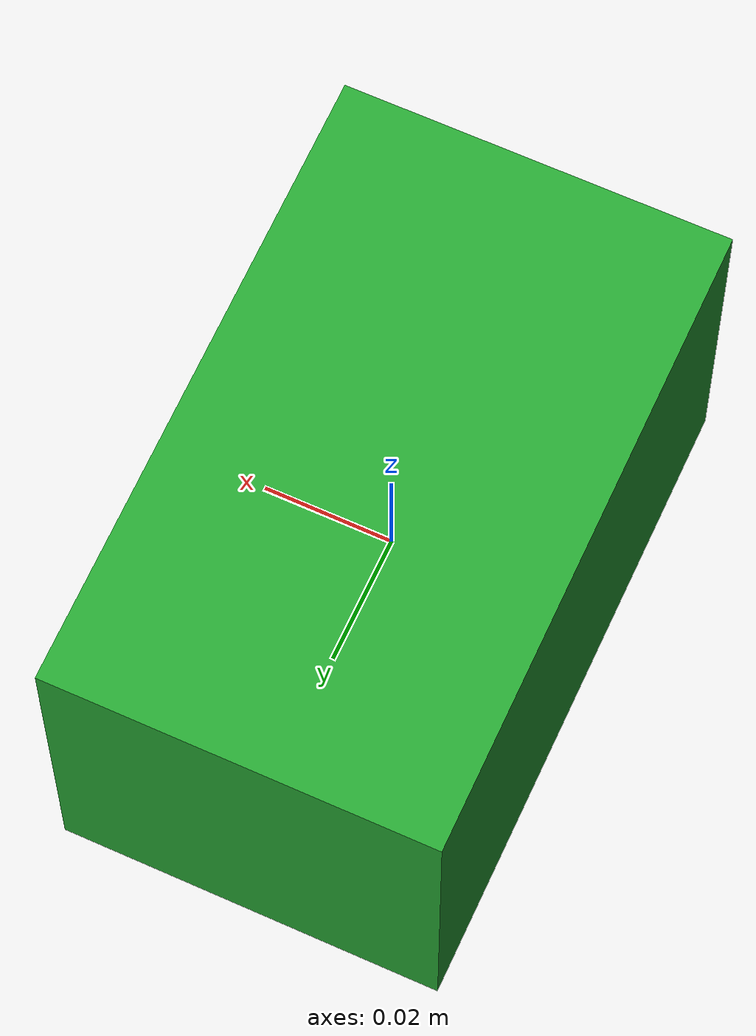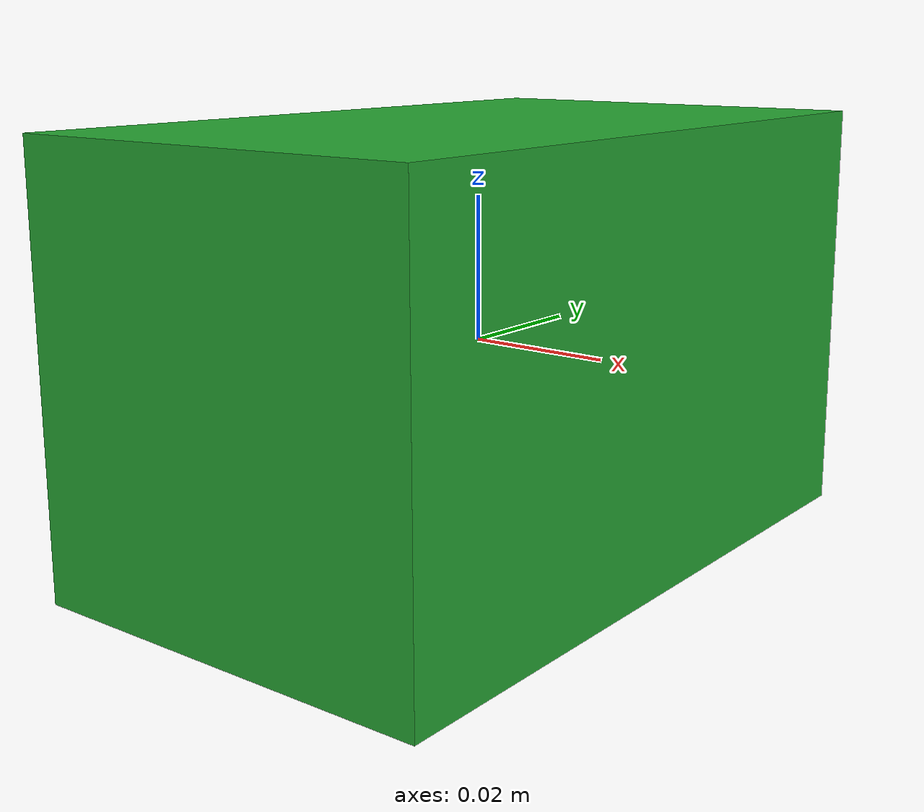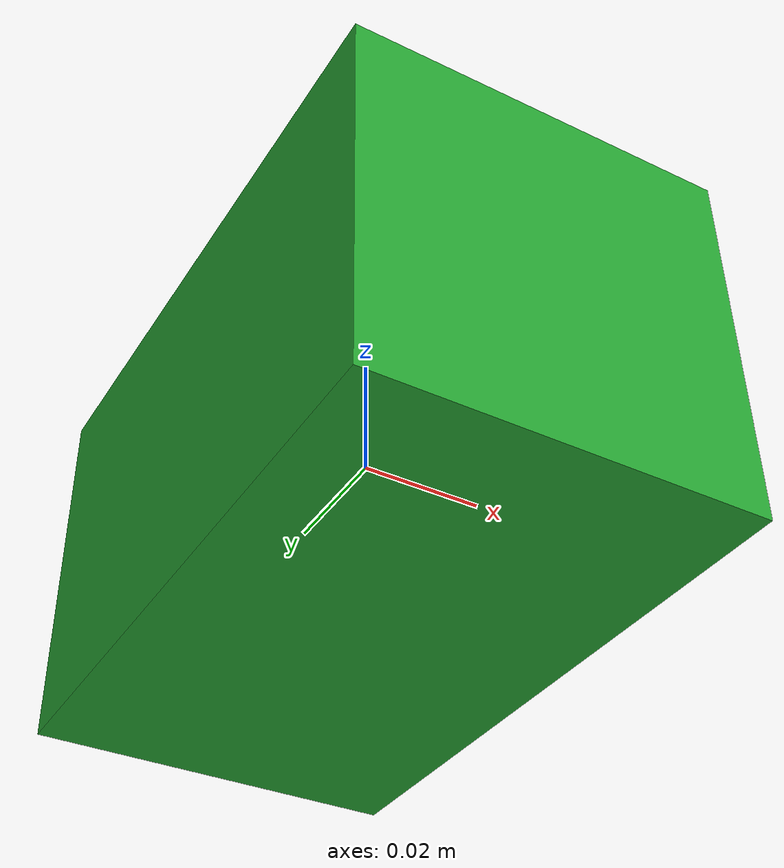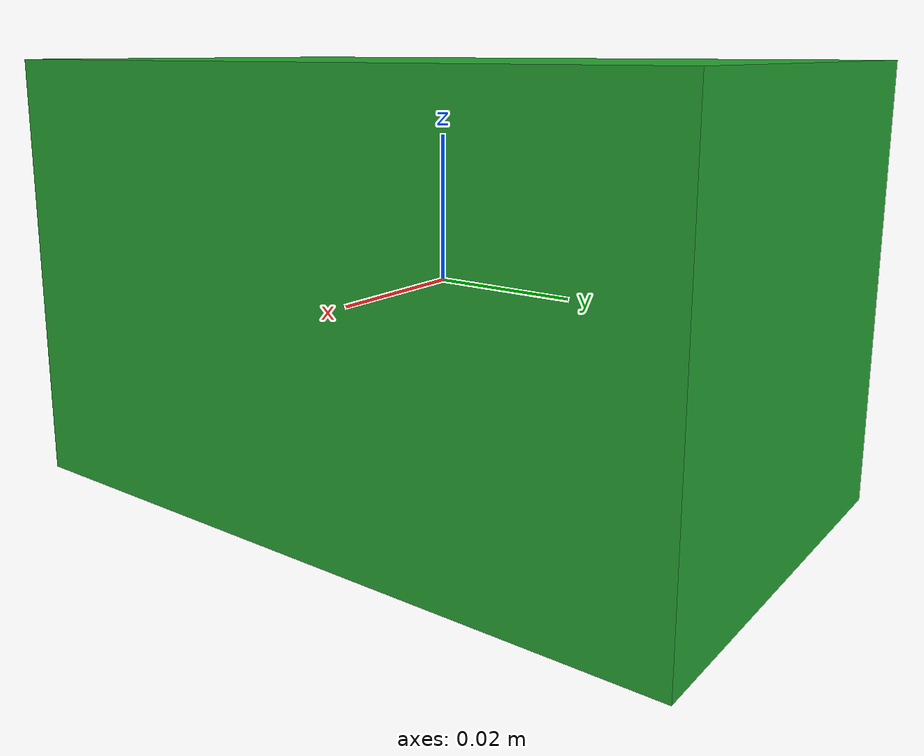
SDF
<?xml version="1.0" ?>
<sdf version='1.4'>
  <model name="green_cube">
      <static>0</static>
      <link name='link'>
        <inertial>
          <mass>0.25</mass>
          <inertia>
            <ixx>0.000041667</ixx>
            <ixy>0.000000</ixy>
            <ixz>0.000000</ixz>
            <iyy>0.000041667</iyy>
            <iyz>0.000000</iyz>
            <izz>0.000041667</izz>
          </inertia>
        </inertial>
        <visual name='visual'>
          <geometry>
            <box>
              <size>0.060 0.1 0.060</size>
            </box>
          </geometry>
          <material>
            <script>
              <uri>file://media/materials/scripts/gazebo.material</uri>
              <name>Gazebo/Green</name>
            </script>
          </material>
        </visual>
        <collision name='collision'>
          <geometry>
            <box>
              <size>0.06 0.1 0.06</size>
            </box>
          </geometry>
          <surface>
            <friction>
              <ode>
                <mu>10000.0</mu>
                <mu2>10000.0</mu2>
              </ode>
            </friction>
            <contact>
              <ode>
                <kp>1000000.0</kp>
                <kd>100.0</kd>
                <max_vel>1.0</max_vel>
                <min_depth>0.0025</min_depth>
              </ode>
            </contact>
          </surface>
        </collision>
        <velocity_decay>
          <linear>0.000000</linear>
          <angular>0.000000</angular>
        </velocity_decay>
        <self_collide>0</self_collide>
        <kinematic>0</kinematic>
        <gravity>1</gravity>
      </link>
  </model>
</sdf>
